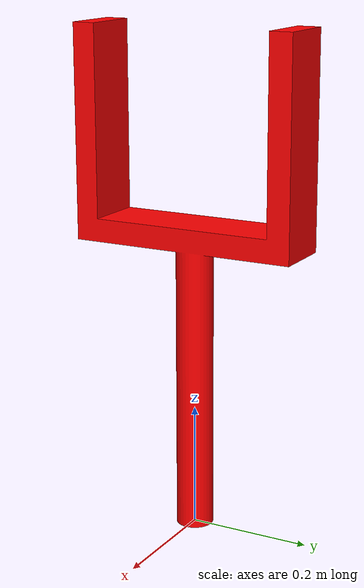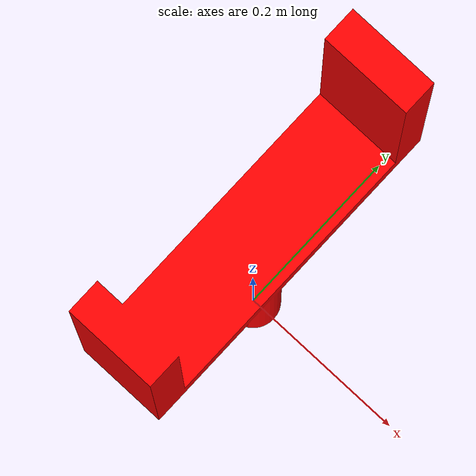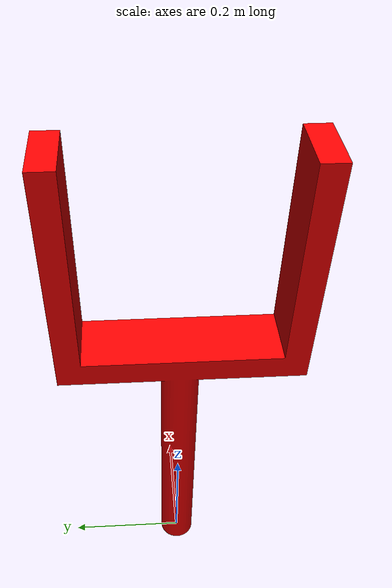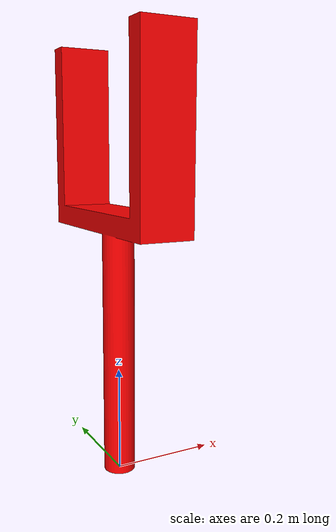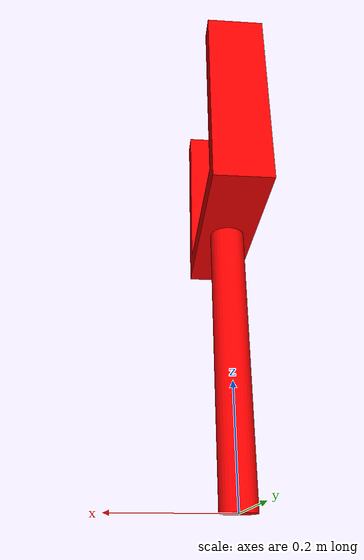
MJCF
<?xml version='1.0' encoding='utf-8'?>
<mujoco model="hook_gripper"><compiler angle="radian" meshdir="./" /><asset><mesh name="hook_mesh" file="hook.stl" /></asset><worldbody><body name="hook_body"><geom type="mesh" mesh="hook_mesh" name="hook_geom" group="0" rgba="1 0 0 1" /></body></worldbody></mujoco>
